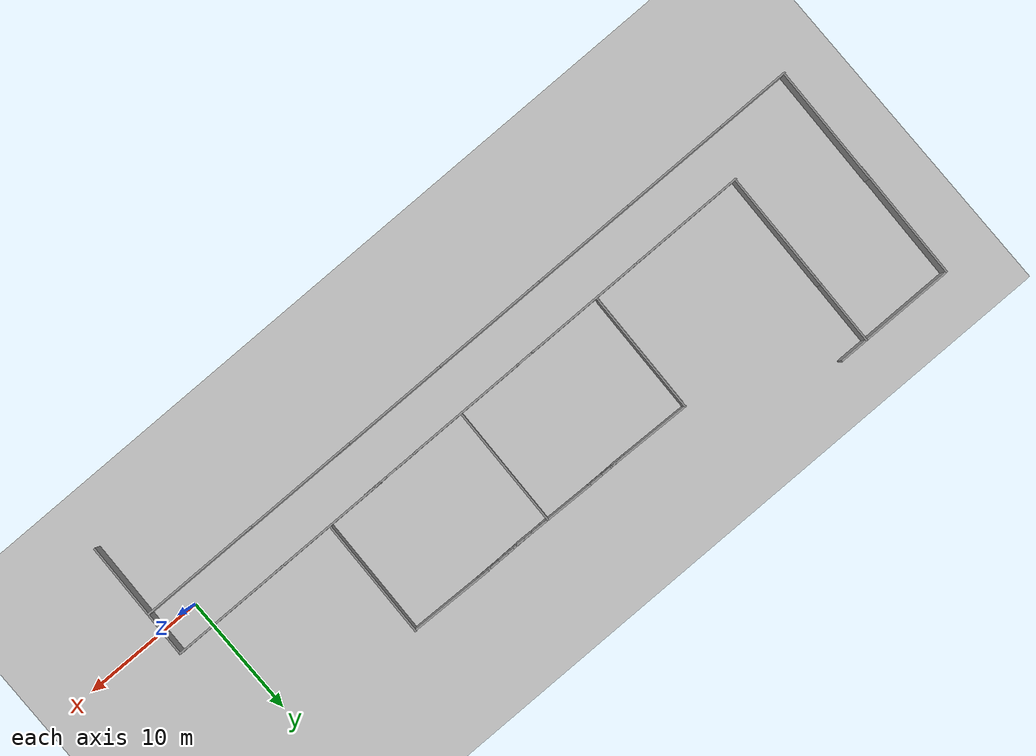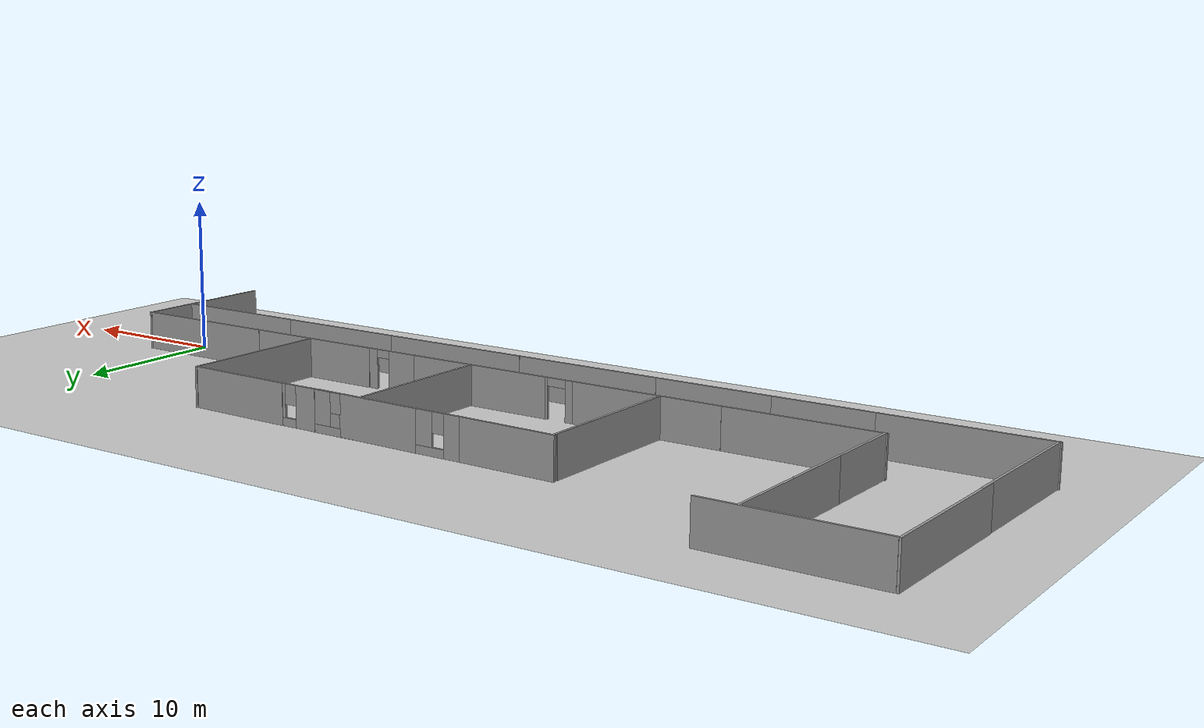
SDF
<sdf version="1.6">
 <world name="default">
  <light name="sun" type="directional">
   <pose>0 0 10 0 -0 0</pose>
   <diffuse>0.8 0.8 0.8 1</diffuse>
   <specular>0.2 0.2 0.2 1</specular>
   <attenuation>
    <range>1000</range>
    <constant>0.9</constant>
    <linear>0.01</linear>
    <quadratic>0.001</quadratic>
   </attenuation>
   <direction>-0.5 0.1 -0.9</direction>
  </light>
  <model name="ground_plane">
   <static>1</static>
   <link name="link">
    <collision name="collision">
     <geometry><plane><normal>0 0 1</normal><size>100 100</size></plane></geometry>
     <surface>
      <contact><collide_bitmask>65535</collide_bitmask></contact>
      <friction><ode><mu>100</mu><mu2>50</mu2></ode></friction>
     </surface>
    </collision>
    <visual name="visual">
     <cast_shadows>0</cast_shadows>
     <geometry><plane><normal>0 0 1</normal><size>100 100</size></plane></geometry>
     <material>
      <script><uri>file://media/materials/scripts/gazebo.material</uri><name>Gazebo/Grey</name></script>
     </material>
    </visual>
   </link>
  </model>
  <gravity>0 0 -9.8</gravity>
  <magnetic_field>6e-06 2.3e-05 -4.2e-05</magnetic_field>
  <atmosphere type="adiabatic"/>
  <physics name="default_physics" default="0" type="ode">
   <max_step_size>0.001</max_step_size>
   <real_time_factor>1</real_time_factor>
   <real_time_update_rate>1000</real_time_update_rate>
  </physics>
  <scene><ambient>0.4 0.4 0.4 1</ambient><background>0.7 0.7 0.7 1</background><shadows>1</shadows></scene>
  <spherical_coordinates>
   <surface_model>EARTH_WGS84</surface_model>
   <latitude_deg>0</latitude_deg>
   <longitude_deg>0</longitude_deg>
   <elevation>0</elevation>
   <heading_deg>0</heading_deg>
  </spherical_coordinates>
  <model name="wall10">
   <pose>-2.12112 2.0663 0 0 -0 0</pose>
   <link name="Wall_1">
    <collision name="Wall_1_Collision">
     <geometry><box><size>10 0.15 2.5</size></box></geometry>
     <pose>0 0 1.25 0 -0 0</pose>
    </collision>
    <visual name="Wall_1_Visual">
     <pose>0 0 1.25 0 -0 0</pose>
     <geometry><box><size>10 0.15 2.5</size></box></geometry>
     <material>
      <script><uri>file://media/materials/scripts/gazebo.material</uri><name>Gazebo/Grey</name></script>
      <ambient>1 1 1 1</ambient>
     </material>
     <meta><layer>0</layer></meta>
    </visual>
   </link>
   <static>1</static>
  </model>
  <model name="wall10_0">
   <pose>-11.3867 2.05893 0 0 -0 0</pose>
   <link name="Wall_1">
    <collision name="Wall_1_Collision">
     <geometry><box><size>10 0.15 2.5</size></box></geometry>
     <pose>0 0 1.25 0 -0 0</pose>
    </collision>
    <visual name="Wall_1_Visual">
     <pose>0 0 1.25 0 -0 0</pose>
     <geometry><box><size>10 0.15 2.5</size></box></geometry>
     <material>
      <script><uri>file://media/materials/scripts/gazebo.material</uri><name>Gazebo/Grey</name></script>
      <ambient>1 1 1 1</ambient>
     </material>
     <meta><layer>0</layer></meta>
    </visual>
   </link>
   <static>1</static>
  </model>
  <model name="door5">
   <pose>-17.3676 2.02937 0 0 -0 0</pose>
   <link name="Wall_0">
    <visual name="Wall_0_Visual_0">
     <pose>-1.5275 0 1.25 0 -0 0</pose>
     <geometry><box><size>1.945 0.15 2.5</size></box></geometry>
     <material>
      <script><uri>file://media/materials/scripts/gazebo.material</uri><name>Gazebo/Grey</name></script>
      <ambient>1 1 1 1</ambient>
     </material>
     <meta><layer>0</layer></meta>
    </visual>
    <collision name="Wall_0_Collision_0">
     <geometry><box><size>1.945 0.15 2.5</size></box></geometry>
     <pose>-1.5275 0 1.25 0 -0 0</pose>
    </collision>
    <visual name="Wall_0_Visual_1">
     <pose>1.4225 0 1.25 0 -0 0</pose>
     <geometry><box><size>2.155 0.15 2.5</size></box></geometry>
     <material>
      <script><uri>file://media/materials/scripts/gazebo.material</uri><name>Gazebo/Grey</name></script>
      <ambient>1 1 1 1</ambient>
     </material>
     <meta><layer>0</layer></meta>
    </visual>
    <collision name="Wall_0_Collision_1">
     <geometry><box><size>2.155 0.15 2.5</size></box></geometry>
     <pose>1.4225 0 1.25 0 -0 0</pose>
    </collision>
    <visual name="Wall_0_Visual_2">
     <pose>-0.105 0 2.25 0 -0 0</pose>
     <geometry><box><size>0.9 0.15 0.5</size></box></geometry>
     <material>
      <script><uri>file://media/materials/scripts/gazebo.material</uri><name>Gazebo/Grey</name></script>
      <ambient>1 1 1 1</ambient>
     </material>
     <meta><layer>0</layer></meta>
    </visual>
    <collision name="Wall_0_Collision_2">
     <geometry><box><size>0.9 0.15 0.5</size></box></geometry>
     <pose>-0.105 0 2.25 0 -0 0</pose>
    </collision>
   </link>
   <static>1</static>
  </model>
  <model name="wall10_1">
   <pose>-11.4195 7.02789 0 0 -0 1.55</pose>
   <link name="Wall_1">
    <collision name="Wall_1_Collision">
     <geometry><box><size>10 0.15 2.5</size></box></geometry>
     <pose>0 0 1.25 0 -0 0</pose>
    </collision>
    <visual name="Wall_1_Visual">
     <pose>0 0 1.25 0 -0 0</pose>
     <geometry><box><size>10 0.15 2.5</size></box></geometry>
     <material>
      <script><uri>file://media/materials/scripts/gazebo.material</uri><name>Gazebo/Grey</name></script>
      <ambient>1 1 1 1</ambient>
     </material>
     <meta><layer>0</layer></meta>
    </visual>
   </link>
   <static>1</static>
  </model>
  <model name="wall10_1_clone">
   <pose>-24.038 7.07601 0 0 -0 1.55</pose>
   <link name="Wall_1">
    <collision name="Wall_1_Collision">
     <geometry><box><size>10 0.15 2.5</size></box></geometry>
     <pose>0 0 1.25 0 -0 0</pose>
    </collision>
    <visual name="Wall_1_Visual">
     <pose>0 0 1.25 0 -0 0</pose>
     <geometry><box><size>10 0.15 2.5</size></box></geometry>
     <material>
      <script><uri>file://media/materials/scripts/gazebo.material</uri><name>Gazebo/Grey</name></script>
      <ambient>1 1 1 1</ambient>
     </material>
     <meta><layer>0</layer></meta>
    </visual>
   </link>
   <static>1</static>
  </model>
  <model name="wall10_0_clone">
   <pose>-24.5279 2.01783 0 0 -0 0</pose>
   <link name="Wall_1">
    <collision name="Wall_1_Collision">
     <geometry><box><size>10 0.15 2.5</size></box></geometry>
     <pose>0 0 1.25 0 -0 0</pose>
    </collision>
    <visual name="Wall_1_Visual">
     <pose>0 0 1.25 0 -0 0</pose>
     <geometry><box><size>10 0.15 2.5</size></box></geometry>
     <material>
      <script><uri>file://media/materials/scripts/gazebo.material</uri><name>Gazebo/Grey</name></script>
      <ambient>1 1 1 1</ambient>
     </material>
     <meta><layer>0</layer></meta>
    </visual>
   </link>
   <static>1</static>
  </model>
  <model name="window">
   <pose>-18.9241 12.0327 0 0 -0 0</pose>
   <link name="Wall_2">
    <visual name="Wall_2_Visual_0">
     <pose>-1.04762 0 1.25 0 -0 0</pose>
     <geometry><box><size>1.40477 0.15 2.5</size></box></geometry>
     <material>
      <script><uri>file://media/materials/scripts/gazebo.material</uri><name>Gazebo/Grey</name></script>
      <ambient>1 1 1 1</ambient>
     </material>
     <meta><layer>0</layer></meta>
    </visual>
    <collision name="Wall_2_Collision_0">
     <geometry><box><size>1.40477 0.15 2.5</size></box></geometry>
     <pose>-1.04762 0 1.25 0 -0 0</pose>
    </collision>
    <visual name="Wall_2_Visual_1">
     <pose>0.702384 0 0.25 0 -0 0</pose>
     <geometry><box><size>2.09523 0.15 0.5</size></box></geometry>
     <material>
      <script><uri>file://media/materials/scripts/gazebo.material</uri><name>Gazebo/Grey</name></script>
      <ambient>1 1 1 1</ambient>
     </material>
     <meta><layer>0</layer></meta>
    </visual>
    <collision name="Wall_2_Collision_1">
     <geometry><box><size>2.09523 0.15 0.5</size></box></geometry>
     <pose>0.702384 0 0.25 0 -0 0</pose>
    </collision>
    <visual name="Wall_2_Visual_2">
     <pose>1.10238 0 1.5 0 -0 0</pose>
     <geometry><box><size>1.29523 0.15 2</size></box></geometry>
     <material>
      <script><uri>file://media/materials/scripts/gazebo.material</uri><name>Gazebo/Grey</name></script>
      <ambient>1 1 1 1</ambient>
     </material>
     <meta><layer>0</layer></meta>
    </visual>
    <collision name="Wall_2_Collision_2">
     <geometry><box><size>1.29523 0.15 2</size></box></geometry>
     <pose>1.10238 0 1.5 0 -0 0</pose>
    </collision>
    <visual name="Wall_2_Visual_3">
     <pose>0.054767 0 1.9 0 -0 0</pose>
     <geometry><box><size>0.8 0.15 1.2</size></box></geometry>
     <material>
      <script><uri>file://media/materials/scripts/gazebo.material</uri><name>Gazebo/Grey</name></script>
      <ambient>1 1 1 1</ambient>
     </material>
     <meta><layer>0</layer></meta>
    </visual>
    <collision name="Wall_2_Collision_3">
     <geometry><box><size>0.8 0.15 1.2</size></box></geometry>
     <pose>0.054767 0 1.9 0 -0 0</pose>
    </collision>
   </link>
   <static>1</static>
  </model>
  <model name="wallyese">
   <pose>-14.7575 11.9875 0 0 -0 1.55</pose>
   <link name="Wall_2">
    <collision name="Wall_2_Collision">
     <geometry><box><size>7 0.15 2.5</size></box></geometry>
     <pose>0 0 1.25 0 -0 0</pose>
    </collision>
    <visual name="Wall_2_Visual">
     <pose>0 0 1.25 0 -0 0</pose>
     <geometry><box><size>7 0.15 2.5</size></box></geometry>
     <material>
      <script><uri>file://media/materials/scripts/gazebo.material</uri><name>Gazebo/Grey</name></script>
      <ambient>1 1 1 1</ambient>
     </material>
     <meta><layer>0</layer></meta>
    </visual>
    <pose>0 0 0 0 -0 -1.5708</pose>
   </link>
   <static>1</static>
  </model>
  <model name="window_clone">
   <pose>-21.4097 12.0195 0 0 -0 0</pose>
   <link name="Wall_2">
    <visual name="Wall_2_Visual_0">
     <pose>-1.04762 0 1.25 0 -0 0</pose>
     <geometry><box><size>1.40477 0.15 2.5</size></box></geometry>
     <material>
      <script><uri>file://media/materials/scripts/gazebo.material</uri><name>Gazebo/Grey</name></script>
      <ambient>1 1 1 1</ambient>
     </material>
     <meta><layer>0</layer></meta>
    </visual>
    <collision name="Wall_2_Collision_0">
     <geometry><box><size>1.40477 0.15 2.5</size></box></geometry>
     <pose>-1.04762 0 1.25 0 -0 0</pose>
    </collision>
    <visual name="Wall_2_Visual_1">
     <pose>0.702384 0 0.25 0 -0 0</pose>
     <geometry><box><size>2.09523 0.15 0.5</size></box></geometry>
     <material>
      <script><uri>file://media/materials/scripts/gazebo.material</uri><name>Gazebo/Grey</name></script>
      <ambient>1 1 1 1</ambient>
     </material>
     <meta><layer>0</layer></meta>
    </visual>
    <collision name="Wall_2_Collision_1">
     <geometry><box><size>2.09523 0.15 0.5</size></box></geometry>
     <pose>0.702384 0 0.25 0 -0 0</pose>
    </collision>
    <visual name="Wall_2_Visual_2">
     <pose>1.10238 0 1.5 0 -0 0</pose>
     <geometry><box><size>1.29523 0.15 2</size></box></geometry>
     <material>
      <script><uri>file://media/materials/scripts/gazebo.material</uri><name>Gazebo/Grey</name></script>
      <ambient>1 1 1 1</ambient>
     </material>
     <meta><layer>0</layer></meta>
    </visual>
    <collision name="Wall_2_Collision_2">
     <geometry><box><size>1.29523 0.15 2</size></box></geometry>
     <pose>1.10238 0 1.5 0 -0 0</pose>
    </collision>
    <visual name="Wall_2_Visual_3">
     <pose>0.054767 0 1.9 0 -0 0</pose>
     <geometry><box><size>0.8 0.15 1.2</size></box></geometry>
     <material>
      <script><uri>file://media/materials/scripts/gazebo.material</uri><name>Gazebo/Grey</name></script>
      <ambient>1 1 1 1</ambient>
     </material>
     <meta><layer>0</layer></meta>
    </visual>
    <collision name="Wall_2_Collision_3">
     <geometry><box><size>0.8 0.15 1.2</size></box></geometry>
     <pose>0.054767 0 1.9 0 -0 0</pose>
    </collision>
   </link>
   <static>1</static>
  </model>
  <model name="window_clone_clone">
   <pose>-22.2738 12.0211 -0.01363 0 -0 0</pose>
   <link name="Wall_2">
    <visual name="Wall_2_Visual_0">
     <pose>-1.04762 0 1.25 0 -0 0</pose>
     <geometry><box><size>1.40477 0.15 2.5</size></box></geometry>
     <material>
      <script><uri>file://media/materials/scripts/gazebo.material</uri><name>Gazebo/Grey</name></script>
      <ambient>1 1 1 1</ambient>
     </material>
     <meta><layer>0</layer></meta>
    </visual>
    <collision name="Wall_2_Collision_0">
     <geometry><box><size>1.40477 0.15 2.5</size></box></geometry>
     <pose>-1.04762 0 1.25 0 -0 0</pose>
    </collision>
    <visual name="Wall_2_Visual_1">
     <pose>0.702384 0 0.25 0 -0 0</pose>
     <geometry><box><size>2.09523 0.15 0.5</size></box></geometry>
     <material>
      <script><uri>file://media/materials/scripts/gazebo.material</uri><name>Gazebo/Grey</name></script>
      <ambient>1 1 1 1</ambient>
     </material>
     <meta><layer>0</layer></meta>
    </visual>
    <collision name="Wall_2_Collision_1">
     <geometry><box><size>2.09523 0.15 0.5</size></box></geometry>
     <pose>0.702384 0 0.25 0 -0 0</pose>
    </collision>
    <visual name="Wall_2_Visual_2">
     <pose>1.10238 0 1.5 0 -0 0</pose>
     <geometry><box><size>1.29523 0.15 2</size></box></geometry>
     <material>
      <script><uri>file://media/materials/scripts/gazebo.material</uri><name>Gazebo/Grey</name></script>
      <ambient>1 1 1 1</ambient>
     </material>
     <meta><layer>0</layer></meta>
    </visual>
    <collision name="Wall_2_Collision_2">
     <geometry><box><size>1.29523 0.15 2</size></box></geometry>
     <pose>1.10238 0 1.5 0 -0 0</pose>
    </collision>
    <visual name="Wall_2_Visual_3">
     <pose>0.054767 0 1.9 0 -0 0</pose>
     <geometry><box><size>0.8 0.15 1.2</size></box></geometry>
     <material>
      <script><uri>file://media/materials/scripts/gazebo.material</uri><name>Gazebo/Grey</name></script>
      <ambient>1 1 1 1</ambient>
     </material>
     <meta><layer>0</layer></meta>
    </visual>
    <collision name="Wall_2_Collision_3">
     <geometry><box><size>0.8 0.15 1.2</size></box></geometry>
     <pose>0.054767 0 1.9 0 -0 0</pose>
    </collision>
   </link>
   <static>1</static>
  </model>
  <model name="1.2door">
   <pose>-30.4069 2.00899 -0 0 -0 0</pose>
   <link name="Wall_15">
    <visual name="Wall_15_Visual_0">
     <pose>-0.747625 0 1.25 0 -0 0</pose>
     <geometry><box><size>0.50475 0.15 2.5</size></box></geometry>
     <material>
      <script><uri>file://media/materials/scripts/gazebo.material</uri><name>Gazebo/Grey</name></script>
      <ambient>1 1 1 1</ambient>
     </material>
     <meta><layer>0</layer></meta>
    </visual>
    <collision name="Wall_15_Collision_0">
     <geometry><box><size>0.50475 0.15 2.5</size></box></geometry>
     <pose>-0.747625 0 1.25 0 -0 0</pose>
    </collision>
    <visual name="Wall_15_Visual_1">
     <pose>0.857625 0 1.25 0 -0 0</pose>
     <geometry><box><size>0.28475 0.15 2.5</size></box></geometry>
     <material>
      <script><uri>file://media/materials/scripts/gazebo.material</uri><name>Gazebo/Grey</name></script>
      <ambient>1 1 1 1</ambient>
     </material>
     <meta><layer>0</layer></meta>
    </visual>
    <collision name="Wall_15_Collision_1">
     <geometry><box><size>0.28475 0.15 2.5</size></box></geometry>
     <pose>0.857625 0 1.25 0 -0 0</pose>
    </collision>
    <visual name="Wall_15_Visual_2">
     <pose>0.11 0 2.25 0 -0 0</pose>
     <geometry><box><size>1.2105 0.15 0.5</size></box></geometry>
     <material>
      <script><uri>file://media/materials/scripts/gazebo.material</uri><name>Gazebo/Grey</name></script>
      <ambient>1 1 1 1</ambient>
     </material>
     <meta><layer>0</layer></meta>
    </visual>
    <collision name="Wall_15_Collision_2">
     <geometry><box><size>1.2105 0.15 0.5</size></box></geometry>
     <pose>0.11 0 2.25 0 -0 0</pose>
    </collision>
   </link>
   <static>1</static>
  </model>
  <model name="wall10_1_clone_clone">
   <pose>-37.0235 7.2489 0 0 -0 1.55</pose>
   <link name="Wall_1">
    <collision name="Wall_1_Collision">
     <geometry><box><size>10 0.15 2.5</size></box></geometry>
     <pose>0 0 1.25 0 -0 0</pose>
    </collision>
    <visual name="Wall_1_Visual">
     <pose>0 0 1.25 0 -0 0</pose>
     <geometry><box><size>10 0.15 2.5</size></box></geometry>
     <material>
      <script><uri>file://media/materials/scripts/gazebo.material</uri><name>Gazebo/Grey</name></script>
      <ambient>1 1 1 1</ambient>
     </material>
     <meta><layer>0</layer></meta>
    </visual>
   </link>
   <static>1</static>
  </model>
  <model name="wall10_0_clone_clone">
   <pose>-36.0112 2.00716 0 0 -0 0</pose>
   <link name="Wall_1">
    <collision name="Wall_1_Collision">
     <geometry><box><size>10 0.15 2.5</size></box></geometry>
     <pose>0 0 1.25 0 -0 0</pose>
    </collision>
    <visual name="Wall_1_Visual">
     <pose>0 0 1.25 0 -0 0</pose>
     <geometry><box><size>10 0.15 2.5</size></box></geometry>
     <material>
      <script><uri>file://media/materials/scripts/gazebo.material</uri><name>Gazebo/Grey</name></script>
      <ambient>1 1 1 1</ambient>
     </material>
     <meta><layer>0</layer></meta>
    </visual>
   </link>
   <static>1</static>
  </model>
  <model name="window_clone_0">
   <pose>-29.5317 12.125 0 0 -0 0</pose>
   <link name="Wall_2">
    <visual name="Wall_2_Visual_0">
     <pose>-1.04762 0 1.25 0 -0 0</pose>
     <geometry><box><size>1.40477 0.15 2.5</size></box></geometry>
     <material>
      <script><uri>file://media/materials/scripts/gazebo.material</uri><name>Gazebo/Grey</name></script>
      <ambient>1 1 1 1</ambient>
     </material>
     <meta><layer>0</layer></meta>
    </visual>
    <collision name="Wall_2_Collision_0">
     <geometry><box><size>1.40477 0.15 2.5</size></box></geometry>
     <pose>-1.04762 0 1.25 0 -0 0</pose>
    </collision>
    <visual name="Wall_2_Visual_1">
     <pose>0.702384 0 0.25 0 -0 0</pose>
     <geometry><box><size>2.09523 0.15 0.5</size></box></geometry>
     <material>
      <script><uri>file://media/materials/scripts/gazebo.material</uri><name>Gazebo/Grey</name></script>
      <ambient>1 1 1 1</ambient>
     </material>
     <meta><layer>0</layer></meta>
    </visual>
    <collision name="Wall_2_Collision_1">
     <geometry><box><size>2.09523 0.15 0.5</size></box></geometry>
     <pose>0.702384 0 0.25 0 -0 0</pose>
    </collision>
    <visual name="Wall_2_Visual_2">
     <pose>1.10238 0 1.5 0 -0 0</pose>
     <geometry><box><size>1.29523 0.15 2</size></box></geometry>
     <material>
      <script><uri>file://media/materials/scripts/gazebo.material</uri><name>Gazebo/Grey</name></script>
      <ambient>1 1 1 1</ambient>
     </material>
     <meta><layer>0</layer></meta>
    </visual>
    <collision name="Wall_2_Collision_2">
     <geometry><box><size>1.29523 0.15 2</size></box></geometry>
     <pose>1.10238 0 1.5 0 -0 0</pose>
    </collision>
    <visual name="Wall_2_Visual_3">
     <pose>0.054767 0 1.9 0 -0 0</pose>
     <geometry><box><size>0.8 0.15 1.2</size></box></geometry>
     <material>
      <script><uri>file://media/materials/scripts/gazebo.material</uri><name>Gazebo/Grey</name></script>
      <ambient>1 1 1 1</ambient>
     </material>
     <meta><layer>0</layer></meta>
    </visual>
    <collision name="Wall_2_Collision_3">
     <geometry><box><size>0.8 0.15 1.2</size></box></geometry>
     <pose>0.054767 0 1.9 0 -0 0</pose>
    </collision>
   </link>
   <static>1</static>
  </model>
  <model name="wallyese_clone">
   <pose>-33.53 12.1796 0 0 -0 1.55</pose>
   <link name="Wall_2">
    <collision name="Wall_2_Collision">
     <geometry><box><size>7 0.15 2.5</size></box></geometry>
     <pose>0 0 1.25 0 -0 0</pose>
    </collision>
    <visual name="Wall_2_Visual">
     <pose>0 0 1.25 0 -0 0</pose>
     <geometry><box><size>7 0.15 2.5</size></box></geometry>
     <material>
      <script><uri>file://media/materials/scripts/gazebo.material</uri><name>Gazebo/Grey</name></script>
      <ambient>1 1 1 1</ambient>
     </material>
     <meta><layer>0</layer></meta>
    </visual>
    <pose>0 0 0 0 -0 -1.5708</pose>
   </link>
   <static>1</static>
  </model>
  <model name="wallyese_clone_clone">
   <pose>-24.4681 12.0607 0 0 -0 1.55</pose>
   <link name="Wall_2">
    <collision name="Wall_2_Collision">
     <geometry><box><size>7 0.15 2.5</size></box></geometry>
     <pose>0 0 1.25 0 -0 0</pose>
    </collision>
    <visual name="Wall_2_Visual">
     <pose>0 0 1.25 0 -0 0</pose>
     <geometry><box><size>7 0.15 2.5</size></box></geometry>
     <material>
      <script><uri>file://media/materials/scripts/gazebo.material</uri><name>Gazebo/Grey</name></script>
      <ambient>1 1 1 1</ambient>
     </material>
     <meta><layer>0</layer></meta>
    </visual>
    <pose>0 0 0 0 -0 -1.5708</pose>
   </link>
   <static>1</static>
  </model>
  <model name="wall10_1_clone_clone_clone">
   <pose>-37.0571 7.0094 0 0 -0 1.55</pose>
   <link name="Wall_1">
    <collision name="Wall_1_Collision">
     <geometry><box><size>10 0.15 2.5</size></box></geometry>
     <pose>0 0 1.25 0 -0 0</pose>
    </collision>
    <visual name="Wall_1_Visual">
     <pose>0 0 1.25 0 -0 0</pose>
     <geometry><box><size>10 0.15 2.5</size></box></geometry>
     <material>
      <script><uri>file://media/materials/scripts/gazebo.material</uri><name>Gazebo/Grey</name></script>
      <ambient>1 1 1 1</ambient>
     </material>
     <meta><layer>0</layer></meta>
    </visual>
   </link>
   <static>1</static>
  </model>
  <model name="wall10_2">
   <pose>-45.5972 2.00011 0 0 -0 0</pose>
   <link name="Wall_1">
    <collision name="Wall_1_Collision">
     <geometry><box><size>10 0.15 2.5</size></box></geometry>
     <pose>0 0 1.25 0 -0 0</pose>
    </collision>
    <visual name="Wall_1_Visual">
     <pose>0 0 1.25 0 -0 0</pose>
     <geometry><box><size>10 0.15 2.5</size></box></geometry>
     <material>
      <script><uri>file://media/materials/scripts/gazebo.material</uri><name>Gazebo/Grey</name></script>
      <ambient>1 1 1 1</ambient>
     </material>
     <meta><layer>0</layer></meta>
    </visual>
   </link>
   <static>1</static>
  </model>
  <model name="wall10_3">
   <pose>-2.17325 -1.61963 0 0 -0 0</pose>
   <link name="Wall_1">
    <collision name="Wall_1_Collision">
     <geometry><box><size>10 0.15 2.5</size></box></geometry>
     <pose>0 0 1.25 0 -0 0</pose>
    </collision>
    <visual name="Wall_1_Visual">
     <pose>0 0 1.25 0 -0 0</pose>
     <geometry><box><size>10 0.15 2.5</size></box></geometry>
     <material>
      <script><uri>file://media/materials/scripts/gazebo.material</uri><name>Gazebo/Grey</name></script>
      <ambient>1 1 1 1</ambient>
     </material>
     <meta><layer>0</layer></meta>
    </visual>
   </link>
   <static>1</static>
  </model>
  <model name="wall10_3_clone">
   <pose>-11.528 -1.60047 0 0 -0 0</pose>
   <link name="Wall_1">
    <collision name="Wall_1_Collision">
     <geometry><box><size>10 0.15 2.5</size></box></geometry>
     <pose>0 0 1.25 0 -0 0</pose>
    </collision>
    <visual name="Wall_1_Visual">
     <pose>0 0 1.25 0 -0 0</pose>
     <geometry><box><size>10 0.15 2.5</size></box></geometry>
     <material>
      <script><uri>file://media/materials/scripts/gazebo.material</uri><name>Gazebo/Grey</name></script>
      <ambient>1 1 1 1</ambient>
     </material>
     <meta><layer>0</layer></meta>
    </visual>
   </link>
   <static>1</static>
  </model>
  <model name="wall10_3_clone_0">
   <pose>-20.1918 -1.58624 0 0 -0 0</pose>
   <link name="Wall_1">
    <collision name="Wall_1_Collision">
     <geometry><box><size>10 0.15 2.5</size></box></geometry>
     <pose>0 0 1.25 0 -0 0</pose>
    </collision>
    <visual name="Wall_1_Visual">
     <pose>0 0 1.25 0 -0 0</pose>
     <geometry><box><size>10 0.15 2.5</size></box></geometry>
     <material>
      <script><uri>file://media/materials/scripts/gazebo.material</uri><name>Gazebo/Grey</name></script>
      <ambient>1 1 1 1</ambient>
     </material>
     <meta><layer>0</layer></meta>
    </visual>
   </link>
   <static>1</static>
  </model>
  <model name="wall10_3_clone_1">
   <pose>-29.7558 -1.59204 0 0 -0 0</pose>
   <link name="Wall_1">
    <collision name="Wall_1_Collision">
     <geometry><box><size>10 0.15 2.5</size></box></geometry>
     <pose>0 0 1.25 0 -0 0</pose>
    </collision>
    <visual name="Wall_1_Visual">
     <pose>0 0 1.25 0 -0 0</pose>
     <geometry><box><size>10 0.15 2.5</size></box></geometry>
     <material>
      <script><uri>file://media/materials/scripts/gazebo.material</uri><name>Gazebo/Grey</name></script>
      <ambient>1 1 1 1</ambient>
     </material>
     <meta><layer>0</layer></meta>
    </visual>
   </link>
   <static>1</static>
  </model>
  <model name="wall10_3_clone_2">
   <pose>-38.253 -1.5975 0 0 -0 0</pose>
   <link name="Wall_1">
    <collision name="Wall_1_Collision">
     <geometry><box><size>10 0.15 2.5</size></box></geometry>
     <pose>0 0 1.25 0 -0 0</pose>
    </collision>
    <visual name="Wall_1_Visual">
     <pose>0 0 1.25 0 -0 0</pose>
     <geometry><box><size>10 0.15 2.5</size></box></geometry>
     <material>
      <script><uri>file://media/materials/scripts/gazebo.material</uri><name>Gazebo/Grey</name></script>
      <ambient>1 1 1 1</ambient>
     </material>
     <meta><layer>0</layer></meta>
    </visual>
   </link>
   <static>1</static>
  </model>
  <model name="wall10_3_clone_3">
   <pose>-47.1522 -1.59451 0 0 -0 0</pose>
   <link name="Wall_1">
    <collision name="Wall_1_Collision">
     <geometry><box><size>10 0.15 2.5</size></box></geometry>
     <pose>0 0 1.25 0 -0 0</pose>
    </collision>
    <visual name="Wall_1_Visual">
     <pose>0 0 1.25 0 -0 0</pose>
     <geometry><box><size>10 0.15 2.5</size></box></geometry>
     <material>
      <script><uri>file://media/materials/scripts/gazebo.material</uri><name>Gazebo/Grey</name></script>
      <ambient>1 1 1 1</ambient>
     </material>
     <meta><layer>0</layer></meta>
    </visual>
   </link>
   <static>1</static>
  </model>
  <model name="wall10_3_clone_4">
   <pose>-53.3349 -1.5919 0 0 -0 0</pose>
   <link name="Wall_1">
    <collision name="Wall_1_Collision">
     <geometry><box><size>10 0.15 2.5</size></box></geometry>
     <pose>0 0 1.25 0 -0 0</pose>
    </collision>
    <visual name="Wall_1_Visual">
     <pose>0 0 1.25 0 -0 0</pose>
     <geometry><box><size>10 0.15 2.5</size></box></geometry>
     <material>
      <script><uri>file://media/materials/scripts/gazebo.material</uri><name>Gazebo/Grey</name></script>
      <ambient>1 1 1 1</ambient>
     </material>
     <meta><layer>0</layer></meta>
    </visual>
   </link>
   <static>1</static>
  </model>
  <model name="wall10_1_clone_0">
   <pose>2.7305 -2.84934 0 0 -0 1.55</pose>
   <link name="Wall_1">
    <collision name="Wall_1_Collision">
     <geometry><box><size>10 0.15 2.5</size></box></geometry>
     <pose>0 0 1.25 0 -0 0</pose>
    </collision>
    <visual name="Wall_1_Visual">
     <pose>0 0 1.25 0 -0 0</pose>
     <geometry><box><size>10 0.15 2.5</size></box></geometry>
     <material>
      <script><uri>file://media/materials/scripts/gazebo.material</uri><name>Gazebo/Grey</name></script>
      <ambient>1 1 1 1</ambient>
     </material>
     <meta><layer>0</layer></meta>
    </visual>
   </link>
   <static>1</static>
  </model>
  <model name="wall10_1_clone_1">
   <pose>-58.0848 3.34331 0 0 -0 1.55</pose>
   <link name="Wall_1">
    <collision name="Wall_1_Collision">
     <geometry><box><size>10 0.15 2.5</size></box></geometry>
     <pose>0 0 1.25 0 -0 0</pose>
    </collision>
    <visual name="Wall_1_Visual">
     <pose>0 0 1.25 0 -0 0</pose>
     <geometry><box><size>10 0.15 2.5</size></box></geometry>
     <material>
      <script><uri>file://media/materials/scripts/gazebo.material</uri><name>Gazebo/Grey</name></script>
      <ambient>1 1 1 1</ambient>
     </material>
     <meta><layer>0</layer></meta>
    </visual>
   </link>
   <static>1</static>
  </model>
  <model name="wall10_1_clone_2">
   <pose>-50.3473 6.92619 0 0 -0 1.55</pose>
   <link name="Wall_1">
    <collision name="Wall_1_Collision">
     <geometry><box><size>10 0.15 2.5</size></box></geometry>
     <pose>0 0 1.25 0 -0 0</pose>
    </collision>
    <visual name="Wall_1_Visual">
     <pose>0 0 1.25 0 -0 0</pose>
     <geometry><box><size>10 0.15 2.5</size></box></geometry>
     <material>
      <script><uri>file://media/materials/scripts/gazebo.material</uri><name>Gazebo/Grey</name></script>
      <ambient>1 1 1 1</ambient>
     </material>
     <meta><layer>0</layer></meta>
    </visual>
   </link>
   <static>1</static>
  </model>
  <model name="wall10_1_clone_3">
   <pose>-50.2483 12.2121 0 0 -0 1.55</pose>
   <link name="Wall_1">
    <collision name="Wall_1_Collision">
     <geometry><box><size>10 0.15 2.5</size></box></geometry>
     <pose>0 0 1.25 0 -0 0</pose>
    </collision>
    <visual name="Wall_1_Visual">
     <pose>0 0 1.25 0 -0 0</pose>
     <geometry><box><size>10 0.15 2.5</size></box></geometry>
     <material>
      <script><uri>file://media/materials/scripts/gazebo.material</uri><name>Gazebo/Grey</name></script>
      <ambient>1 1 1 1</ambient>
     </material>
     <meta><layer>0</layer></meta>
    </visual>
   </link>
   <static>1</static>
  </model>
  <model name="wall10_1_clone_4">
   <pose>-57.93 12.2227 0 0 -0 1.55</pose>
   <link name="Wall_1">
    <collision name="Wall_1_Collision">
     <geometry><box><size>10 0.15 2.5</size></box></geometry>
     <pose>0 0 1.25 0 -0 0</pose>
    </collision>
    <visual name="Wall_1_Visual">
     <pose>0 0 1.25 0 -0 0</pose>
     <geometry><box><size>10 0.15 2.5</size></box></geometry>
     <material>
      <script><uri>file://media/materials/scripts/gazebo.material</uri><name>Gazebo/Grey</name></script>
      <ambient>1 1 1 1</ambient>
     </material>
     <meta><layer>0</layer></meta>
    </visual>
   </link>
   <static>1</static>
  </model>
  <model name="wall10_3_clone_2_clone">
   <pose>-52.7688 17.1568 0 0 -0 0</pose>
   <link name="Wall_1">
    <collision name="Wall_1_Collision">
     <geometry><box><size>10 0.15 2.5</size></box></geometry>
     <pose>0 0 1.25 0 -0 0</pose>
    </collision>
    <visual name="Wall_1_Visual">
     <pose>0 0 1.25 0 -0 0</pose>
     <geometry><box><size>10 0.15 2.5</size></box></geometry>
     <material>
      <script><uri>file://media/materials/scripts/gazebo.material</uri><name>Gazebo/Grey</name></script>
      <ambient>1 1 1 1</ambient>
     </material>
     <meta><layer>0</layer></meta>
    </visual>
   </link>
   <static>1</static>
  </model>
 </world>
</sdf>
